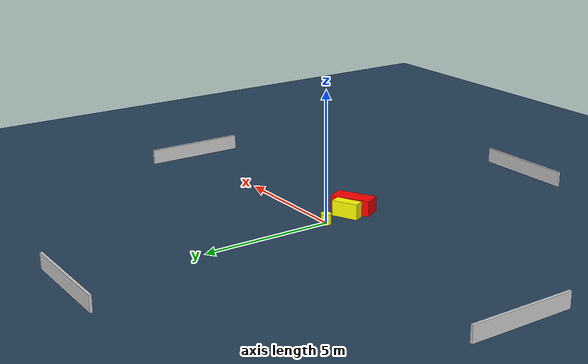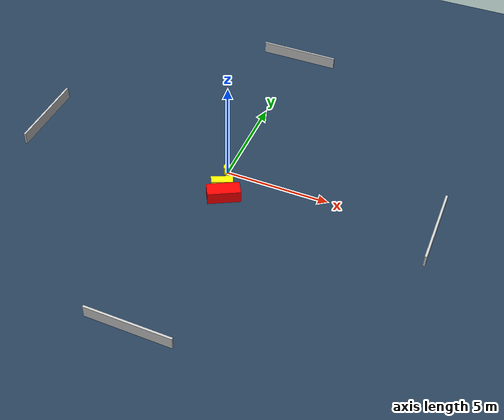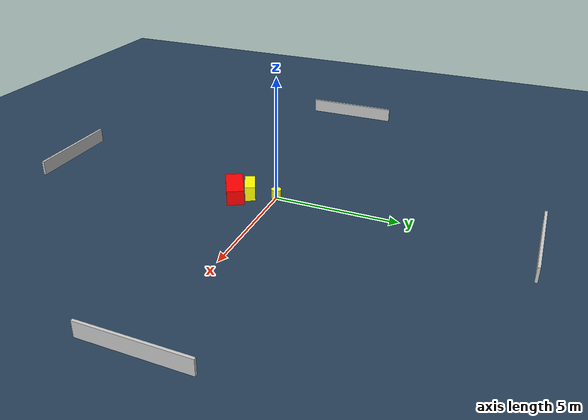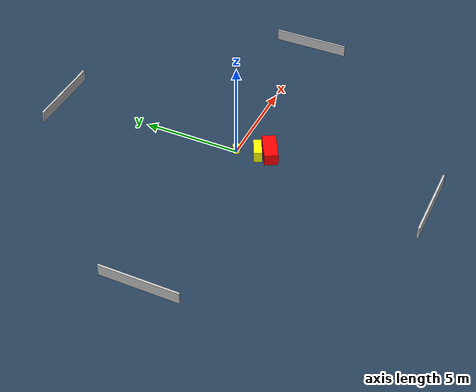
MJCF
<?xml version="1.0" ?>
<mujoco model="generated_environment">
  <option timestep="0.01" integrator="RK4" cone="elliptic"/>
  <default>
    <geom density="1"/>
  </default>
  <asset>
    <texture builtin="gradient" height="3072" name="skybox" rgb1="0.3 0.5 0.7" rgb2="0 0 0" type="skybox" width="512"/>
    <texture builtin="checker" height="300" name="groundplane" rgb1="0.2 0.3 0.4" rgb2="0.1 0.2 0.3" type="2d" width="300"/>
    <material name="groundplane" reflectance="0.2" texrepeat="5 5" texture="groundplane"/>
  </asset>
  <worldbody>
    <light dir="0 0 -1" directional="true" pos="0 0 1.5"/>
    <geom condim="3" friction="0.5 0.005 0.001" material="groundplane" name="floor" pos="0 0 0" size="0 0 0.05" type="plane"/>
    <body name="walls">
      <geom name="wall_1" condim="4" pos="-10.0 0.0 0.3" rgba="0.800000011920929 0.800000011920929 0.800000011920929 1.0" size="0.05 2.0 0.3" type="box"/>
      <geom name="wall_2" condim="4" pos="10.0 0.0 0.3" rgba="0.800000011920929 0.800000011920929 0.800000011920929 1.0" size="0.05 2.0 0.3" type="box"/>
      <geom name="wall_3" condim="4" pos="0.0 -10.0 0.3" rgba="0.800000011920929 0.800000011920929 0.800000011920929 1.0" size="2.0 0.05 0.3" type="box"/>
      <geom name="wall_4" condim="4" pos="0.0 10.0 0.3" rgba="0.800000011920929 0.800000011920929 0.800000011920929 1.0" size="2.0 0.05 0.3" type="box"/>
    </body>
    <body name="robot">
      <joint name="joint_x" type="slide" pos="0 0 0" axis="1 0 0"/>
      <joint name="joint_y" type="slide" pos="0 0 0" axis="0 1 0"/>
      <geom name="robot" type="cylinder" pos="0.0 0.0 0.2" size="0.2 0.2 0.0" mass="5.0" friction="1.0 0.005 0.0001" condim="4" rgba="1.0 1.0 0.0 1.0"/>
    </body>
    <body name="obstacle_1_movable">
      <geom name="obstacle_1_movable" condim="4" pos="0.1774975795273475 -1.073301333173329 0.3" euler="0 0 25.262204056181062" friction="0.0 0.005 0.001" rgba="1.0 1.0 0.0 1.0" size="0.5124612887932192 0.2064466666028909 0.3" type="box" mass="0.1"/>
      <joint type="free"/>
    </body>
    <body name="obstacle_2_static">
      <geom name="obstacle_2_static" condim="4" pos="0.487434820850173 -1.6060073361778342 0.3" euler="0 0 208.51353869266055" friction="0.0 0.005 0.001" rgba="1.0 0.0 0.0 1.0" size="0.7767925965032147 0.34942445760389323 0.3" type="box"/>
    </body>
  </worldbody>
  <actuator>
    <motor name="actuator_x" joint="joint_x" gear="1" ctrlrange="-1 1"/>
    <motor name="actuator_y" joint="joint_y" gear="1" ctrlrange="-1 1"/>
  </actuator>
</mujoco>
